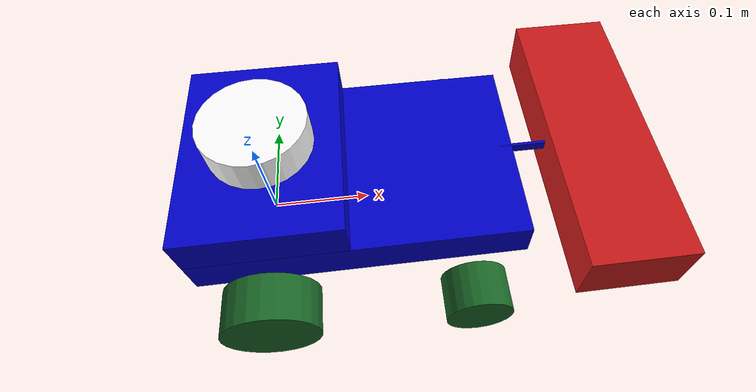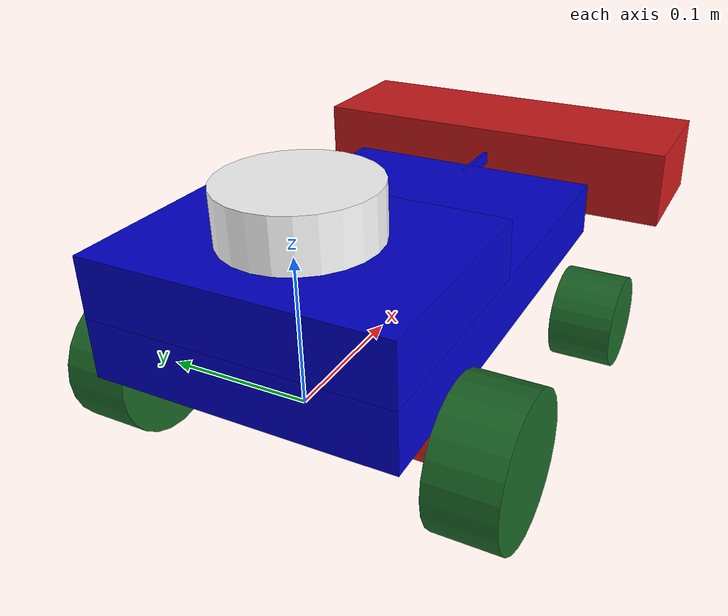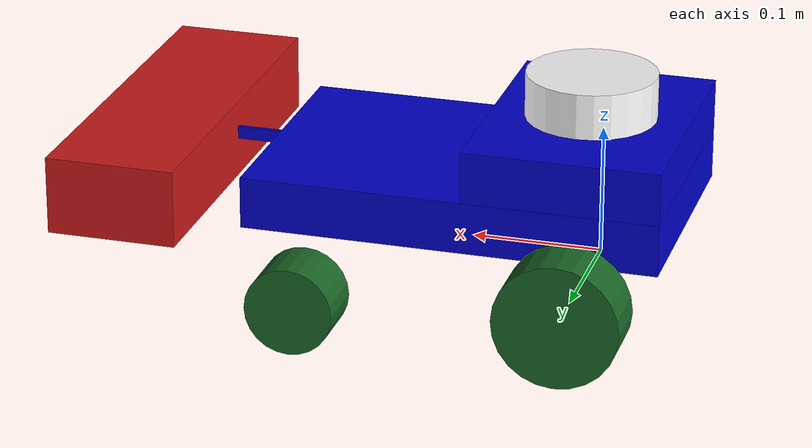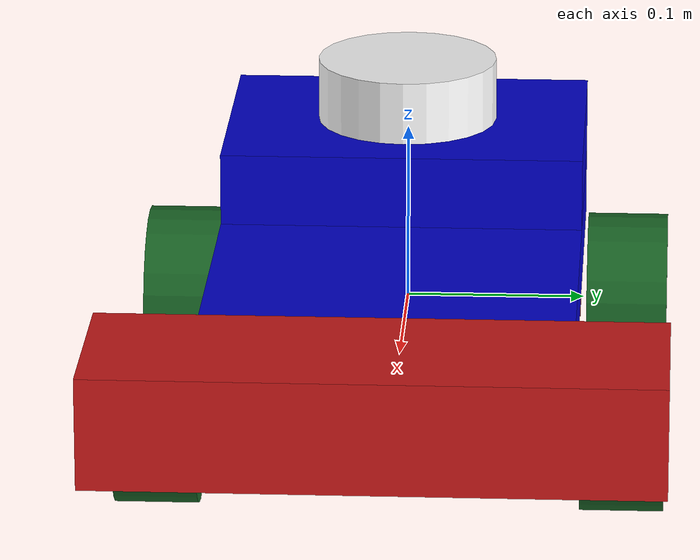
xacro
<?xml version="1.0"?>
<!-- Description of the LEMOWER robot with XACRO to avoid repeating data -->
<robot xmlns:xacro="http://www.ros.org/wiki/xacro"  name="lemower">

    <xacro:arg name="sim_mode" default="false"/>

    <!-- gestion des parametres -->
    <xacro:arg name="use_ros2_control" default="true"/>

    <!-- This will include all the contents of example_include.xacro first. Go check it out! -->
    <xacro:include filename="lemower_include.xacro" />

    <!-- This file is the description of the robot -->
    <xacro:include filename="lemower_core.xacro" />

    <xacro:include filename="lemower_gazebo.xacro" />

    <!-- Switch between ros2_control and Gazebo integrated diff-drive control -->
    <xacro:if value="$(arg use_ros2_control)">
        <xacro:include filename="ros2_control.xacro" />
    </xacro:if>

    <xacro:unless value="$(arg use_ros2_control)">
        <xacro:include filename="lemower_gz_control.xacro" />
    </xacro:unless>

</robot>

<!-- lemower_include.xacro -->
<robot xmlns:xacro="http://www.ros.org/wiki/xacro" >

    <!-- This file is not a robot in and of itself, it just contains some useful tags that could be included in any robot -->

    <!-- Specify some colours -->

    <material name="white">
        <color rgba="1 1 1 1"/>
    </material>

    <material name="orange">
        <color rgba="1 0.3 0.1 1"/>
    </material>

    <material name="blue">
        <color rgba="0 0 .8 1"/>
    </material>

    <material name="black">
        <color rgba="1 1 1 1"/>
    </material>

    <material name="red">
        <color rgba="0.8 0.1 0.1 1"/>
    </material>

    <material name="green">
        <color rgba=".1 .4 .15 1"/>
    </material>

    <!-- Specify some standard inertial calculations https://en.wikipedia.org/wiki/List_of_moments_of_inertia -->
    <!-- These make use of xacro's mathematical functionality -->

    <xacro:macro name="inertial_sphere" params="mass radius *origin">
        <inertial>
            <xacro:insert_block name="origin"/>
            <mass value="${mass}" />
            <inertia ixx="${(2/5) * mass * (radius*radius)}" ixy="0.0" ixz="0.0"
                    iyy="${(2/5) * mass * (radius*radius)}" iyz="0.0"
                    izz="${(2/5) * mass * (radius*radius)}" />
        </inertial>
    </xacro:macro>

    <xacro:macro name="inertial_box" params="mass x y z *origin">
        <inertial>
            <xacro:insert_block name="origin"/>
            <mass value="${mass}" />
            <inertia ixx="${(1/12) * mass * (y*y+z*z)}" ixy="0.0" ixz="0.0"
                    iyy="${(1/12) * mass * (x*x+z*z)}" iyz="0.0"
                    izz="${(1/12) * mass * (x*x+y*y)}" />
        </inertial>
    </xacro:macro>

    <xacro:macro name="inertial_cylinder" params="mass length radius *origin">
        <inertial>
            <xacro:insert_block name="origin"/>
            <mass value="${mass}" />
            <inertia ixx="${(1/12) * mass * (3*radius*radius + length*length)}" ixy="0.0" ixz="0.0"
                    iyy="${(1/12) * mass * (3*radius*radius + length*length)}" iyz="0.0"
                    izz="${(1/2) * mass * (radius*radius)}" />
        </inertial>
    </xacro:macro>
</robot>

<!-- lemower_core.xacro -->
<!-- Description of the LEMOWER robot with XACRO to avoid repeating data -->
<robot xmlns:xacro="http://www.ros.org/wiki/xacro"  name="lemower">

    <link name="base_link">
    </link>
    <gazebo reference="base_link">
        <mu1>1.0</mu1>
        <mu2>1.0</mu2>
    </gazebo>

    <!-- Lien entre base et robot_base l'origine de robot_base est arrière centre bas -->
    <joint name="robot_base_joint" type="fixed">
        <parent link="base_link"/>
        <child link="robot_base"/>
        <origin xyz="-0.065 0 0.029" rpy="0 0 0"/>
    </joint>
    <link name="robot_base">
        <visual>
            <geometry>
                <box size="0.32 0.2 0.04"/>
            </geometry>
            <material name="blue"/>
            <origin xyz="0.16 0 0.02" rpy="0 0 0"/>
        </visual>
        <collision>
            <geometry>
                <box size="0.32 0.2 0.04"/>
            </geometry>
            <origin xyz="0.16 0 0.02" rpy="0 0 0"/>
        </collision>
        <xacro:inertial_box mass="1.5" x="0.18" y="0.2" z="0.04">
            <origin xyz="0.09 0 0.02" rpy="0 0 0"/>
        </xacro:inertial_box>
    </link>
    <gazebo reference="robot_base">
        <material>Gazebo/Blue</material>
    </gazebo>

    <joint name="base_to_elec" type="fixed">
        <parent link="robot_base"/>
        <child link="electronics"/>
        <origin xyz="0 0 0.04" rpy="0 0 0"/>
    </joint>
    <link name="electronics">
        <visual>
            <geometry>
                <box size="0.15 0.2 0.04"/>
            </geometry>
            <origin xyz="0.075 0 0.02" rpy="0 0 0"/>
            <material name="blue"/>
        </visual>
        <collision>
            <geometry>
                <box size="0.15 0.2 0.04"/>
            </geometry>
            <origin xyz="0.075 0 0.02" rpy="0 0 0"/>
        </collision>
        <xacro:inertial_box mass="0.4" x="0.15" y="0.2" z="0.04">
            <origin xyz="0.075 0 0.02" rpy="0 0 0"/>
        </xacro:inertial_box>
    </link>
    <gazebo reference="electronics">
        <material>Gazebo/Blue</material>
    </gazebo>

    <joint name="elec_to_lidar" type="fixed">
        <parent link="electronics"/>
        <child link="lidar"/>
        <origin xyz="0.075 0 0.04" rpy="0 0 0"/>
    </joint>
    <link name="lidar">
        <visual>
            <geometry>
                <cylinder radius="0.05" length="0.04"/>
            </geometry>
            <origin xyz="0 0 0.015" rpy="0 0 0"/>
            <material name="black"/>
        </visual>
        <collision>
            <origin xyz="0 0 0.015" rpy="0 0 0"/>
            <geometry>
                <cylinder radius="0.05" length="0.04"/>
            </geometry>
        </collision>
        <xacro:inertial_cylinder mass="0.1" length="0.04" radius="0.05">
            <origin xyz="0 0 0.015" rpy="0 0 0"/>
        </xacro:inertial_cylinder>
    </link>
    <gazebo reference="lidar">
        <material>Gazebo/Black</material>
    </gazebo>

    <joint name="robot_base_to_bras_decoupe" type="fixed">
        <parent link="robot_base"/>
        <child link="bras decoupe"/>
        <origin xyz="0.31 0 0.03" rpy="0 0 0"/>
    </joint>
    <link name="bras decoupe">
        <visual>
            <geometry>
                <box size="0.06 0.003 0.01"/>
            </geometry>
            <origin xyz="0.028 0 0.005" rpy="0 0 0"/>
            <material name="blue"/>
        </visual>
        <collision>
            <origin xyz="0.028 0 0.005" rpy="0 0 0"/>
            <geometry>
                <box size="0.06 0.003 0.01"/>
            </geometry>
        </collision>
        <xacro:inertial_box mass="0.05" x="0.06" y="0.003" z="0.01">
            <origin xyz="0.03 0.0015 0.005" rpy="0 0 0"/>
        </xacro:inertial_box>
    </link>
    <gazebo reference="bras decoupe">
        <material>Gazebo/Blue</material>
    </gazebo>

    <joint name="bras_decoupe_to_decoupe" type="fixed">
        <parent link="bras decoupe"/>
        <child link="decoupe"/>
        <origin xyz="0.05 0 0" rpy="0 0 0"/>
    </joint>
    <link name="decoupe">
        <visual>
            <geometry>
                <box size="0.1 0.3 0.06"/>
            </geometry>
            <origin xyz="0.045 0 0" rpy="0 0 0"/>
            <material name="red"/>
        </visual>
        <collision>
            <origin xyz="0.045 0 0" rpy="0 0 0"/>
            <geometry>
                <box size="0.1 0.3 0.06"/>
            </geometry>
        </collision>
        <xacro:inertial_box mass="0.5" x="0.1" y="0.3" z="0.06">
            <origin xyz="0.05 0 0" rpy="0 0 0"/>
        </xacro:inertial_box>
    </link>
    <gazebo reference="decoupe">
        <material>Gazebo/Red</material>
    </gazebo>

    <joint name="base_to_motor_gauche" type="fixed">
        <parent link="base_link"/>
        <child link="motor gauche"/>
        <origin xyz="0 0.07 0.0075" rpy="0 0 0"/>
    </joint>
    <link name="motor gauche">
        <visual>
            <origin xyz="0 0 0" rpy="1.5708 0 0"/>
            <geometry>
                <cylinder length="0.057" radius="0.0185"/>
            </geometry>
            <material name="red"/>
        </visual>
        <collision>
            <origin xyz="0 0 0" rpy="1.5708 0 0"/>
            <geometry>
                <cylinder length="0.057" radius="0.0185"/>
            </geometry>
        </collision>
        <xacro:inertial_cylinder mass="0.15" length="0.057" radius="0.0185">
            <origin xyz="0 0 0" rpy="0 0 0"/>
        </xacro:inertial_cylinder>
    </link>
    <gazebo reference="motor gauche">
        <material>Gazebo/Red</material>
    </gazebo>

    <joint name="base_to_motor_droite" type="fixed">
        <parent link="base_link"/>
        <child link="motor droite"/>
        <origin xyz="0 -0.07 0.0075" rpy="0 0 0"/>
    </joint>
    <link name="motor droite">
        <visual>
            <origin xyz="0 0 0" rpy="1.5708 0 0"/>
            <geometry>
                <cylinder length="0.057" radius="0.0185"/>
            </geometry>
            <material name="red"/>
        </visual>
        <collision>
            <origin xyz="0 0 0" rpy="1.5708 0 0"/>
            <geometry>
                <cylinder length="0.057" radius="0.0185"/>
            </geometry>
        </collision>
        <xacro:inertial_cylinder mass="0.15" length="0.057" radius="0.0185">
            <origin xyz="0 0 0" rpy="0 0 0"/>
        </xacro:inertial_cylinder>
    </link>
    <gazebo reference="motor droite">
        <material>Gazebo/Red</material>
    </gazebo>

    <joint name="base_to_roue_arriere_gauche" type="continuous">
        <parent link="base_link"/>
        <child link="Roue arrière gauche"/>
        <origin xyz="0 0.125 0" rpy="-${pi/2} 0 0"/>
        <axis xyz="0 0 1"/>
        <limit effort="0.05" velocity="10.0"/>
    </joint>
    <link name="Roue arrière gauche">
        <visual>
            <origin xyz="0 0 0" rpy="0 0 0"/>
            <geometry>
                <cylinder length="0.045" radius="0.048"/>
            </geometry>
            <material name="green"/>
        </visual>
        <collision>
            <origin xyz="0 0 0" rpy="0 0 0"/>
            <geometry>
                <sphere radius="0.048" />
            </geometry>
        </collision>
        <xacro:inertial_cylinder mass="0.2" length="0.045" radius="0.048">
            <origin xyz="0 0 0" rpy="0 0 0"/>
        </xacro:inertial_cylinder>
    </link>
    <gazebo reference="Roue arrière gauche">
        <material>Gazebo/Green</material>
        <mu1>1.0</mu1>
        <mu2>1.0</mu2>
    </gazebo>

    <joint name="base_to_roue_arriere_droite" type="continuous">
        <parent link="base_link"/>
        <child link="Roue arrière droite"/>
        <origin xyz="0 -0.125 0" rpy="${pi/2} 0 0"/>
        <limit effort="0.05" velocity="10.0"/>
        <axis xyz="0 0 -1"/>
    </joint>
    <link name="Roue arrière droite">
        <visual>
            <origin xyz="0 0 0" rpy="0 0 0"/>
            <geometry>
                <cylinder length="0.045" radius="0.048"/>
            </geometry>
            <material name="green"/>
        </visual>
        <collision>
            <origin xyz="0 0 0" rpy="0 0 0"/>
            <geometry>
                <sphere radius="0.048" />
            </geometry>
        </collision>
        <xacro:inertial_cylinder mass="0.2" length="0.045" radius="0.048">
            <origin xyz="0 0 0" rpy="0 0 0"/>
        </xacro:inertial_cylinder>
    </link>
    <gazebo reference="Roue arrière droite">
        <material>Gazebo/Green</material>
        <mu1>1.0</mu1>
        <mu2>1.0</mu2>
    </gazebo>

    <joint name="robot_base_to_roue_avant_gauche" type="fixed">
        <parent link="robot_base"/>
        <child link="Roue avant gauche"/>
        <origin xyz="0.268 0.125 -0.043" rpy="-${pi/2} 0 0"/>
    </joint>
    <link name="Roue avant gauche">
        <visual>
            <origin xyz="0 0 0" rpy="0 0 0"/>
            <geometry>
                <cylinder length="0.045" radius="0.034"/>
            </geometry>
            <material name="green"/>
        </visual>
        <collision>
            <origin xyz="0 0 0" rpy="0 0 0"/>
            <geometry>
                <sphere radius="0.034" />
            </geometry>
        </collision>
        <xacro:inertial_cylinder mass="0.2" length="0.045" radius="0.034">
            <origin xyz="0 0 0" rpy="0 0 0"/>
        </xacro:inertial_cylinder>
    </link>
    <gazebo reference="Roue avant gauche">
        <material>Gazebo/Green</material>
        <mu1>0.00001</mu1>
        <mu2>0.00001</mu2>
    </gazebo>

    <joint name="robot_base_to_roue_avant_droite" type="fixed">
        <parent link="robot_base"/>
        <child link="Roue avant droite"/>
        <origin xyz="0.268 -0.125 -0.043" rpy="${pi/2} 0 0"/>
    </joint>

    <link name="Roue avant droite">
        <visual>
            <origin xyz="0 0 0" rpy="0 0 0"/>
            <geometry>
                <cylinder length="0.045" radius="0.034"/>
            </geometry>
            <material name="green"/>
        </visual>
        <collision>
            <origin xyz="0 0 0" rpy="0 0 0"/>
            <geometry>
                <sphere radius="0.034" />
            </geometry>
        </collision>
        <xacro:inertial_cylinder mass="0.2" length="0.045" radius="0.034">
            <origin xyz="0 0 0" rpy="0 0 0"/>
        </xacro:inertial_cylinder>
    </link>
    <gazebo reference="Roue avant droite">
        <material>Gazebo/Green</material>
        <mu1>0.00001</mu1>
        <mu2>0.00001</mu2>
    </gazebo>

</robot>
